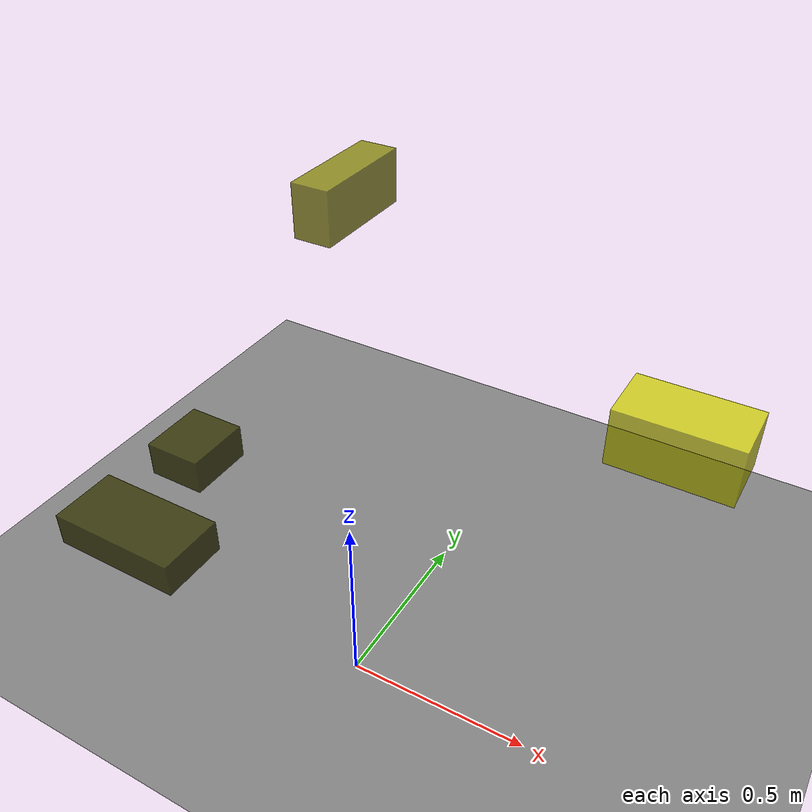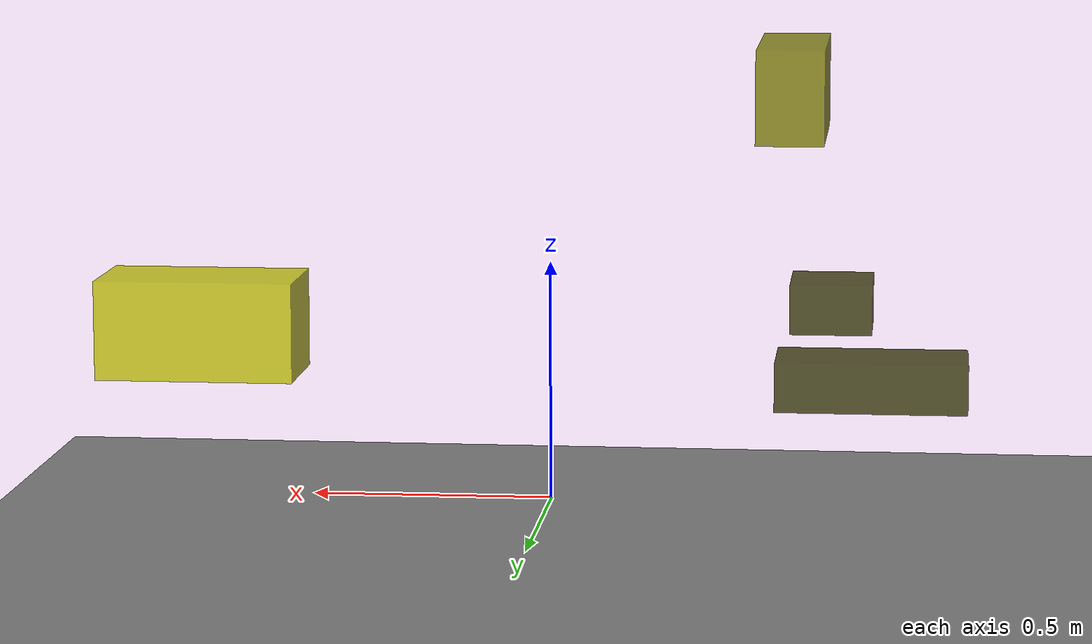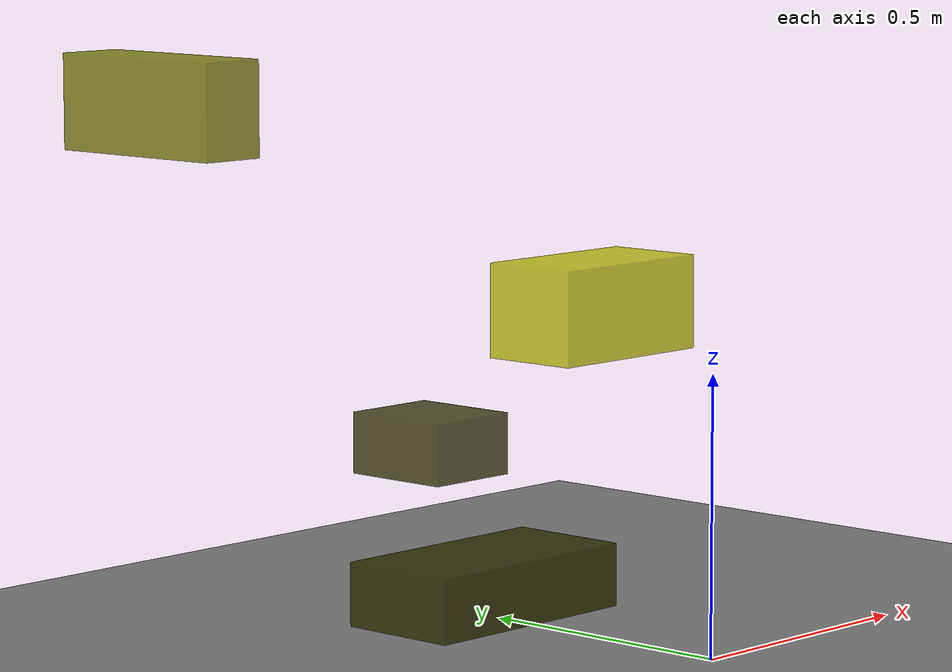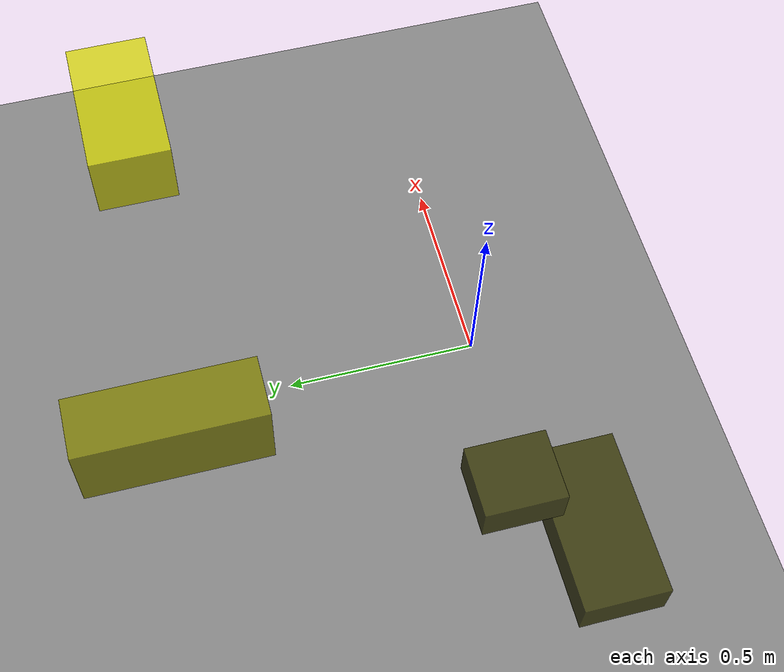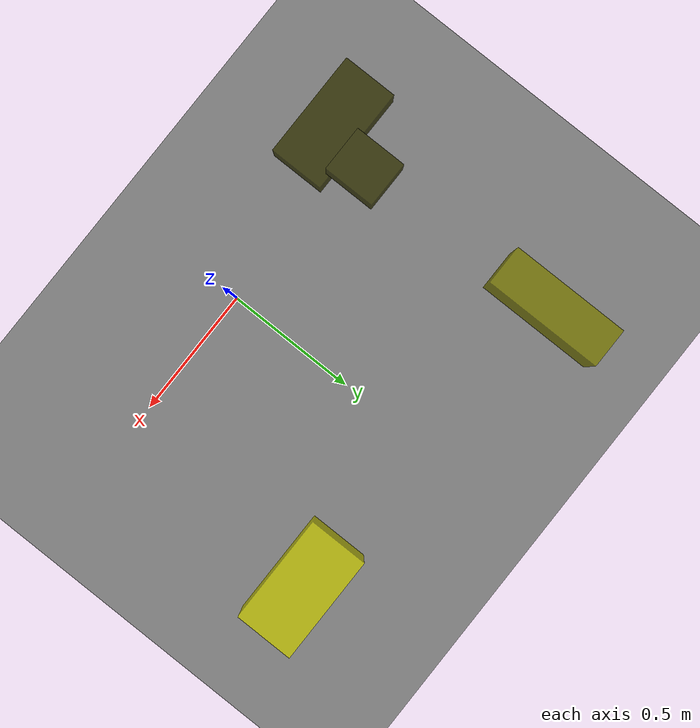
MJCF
<?xml version="1.0"?>
<mujoco model="obstacle_scene">
  <compiler angle="radian" coordinate="local"/>
  <option timestep="0.001" gravity="0 0 -9.81"/>

  <asset>
    <material name="obstacle_mat" rgba="0.8 0.8 0.0 0.8"/>
    <material name="ground_mat" rgba="0.5 0.5 0.5 1"/>
  </asset>

  <worldbody>
    <!-- Ground plane -->
    <geom name="ground" type="plane" size="3 3 0.1" material="ground_mat"/>

    <!-- Obstacles -->
    <body name="obstacle_0" pos="-0.584916 0.111849 0.440866">
      <geom name="obs_0" type="box" size="0.082754 0.094318 0.050581" rgba="0.2 0.2 0.0 0.8"/>
    </body>
    <body name="obstacle_1" pos="-0.527667 0.815247 0.949287">
      <geom name="obs_1" type="box" size="0.061542 0.183270 0.085479" rgba="0.5 0.5 0.0 0.8"/>
    </body>
    <body name="obstacle_2" pos="0.579579 0.785490 0.491016">
      <geom name="obs_2" type="box" size="0.185781 0.101576 0.092940" rgba="0.8 0.8 0.0 0.8"/>
    </body>
    <body name="obstacle_3" pos="-0.664882 -0.082998 0.245781">
      <geom name="obs_3" type="box" size="0.199960 0.102214 0.051325" rgba="0.2 0.2 0.0 0.8"/>
    </body>
  </worldbody>
</mujoco>
